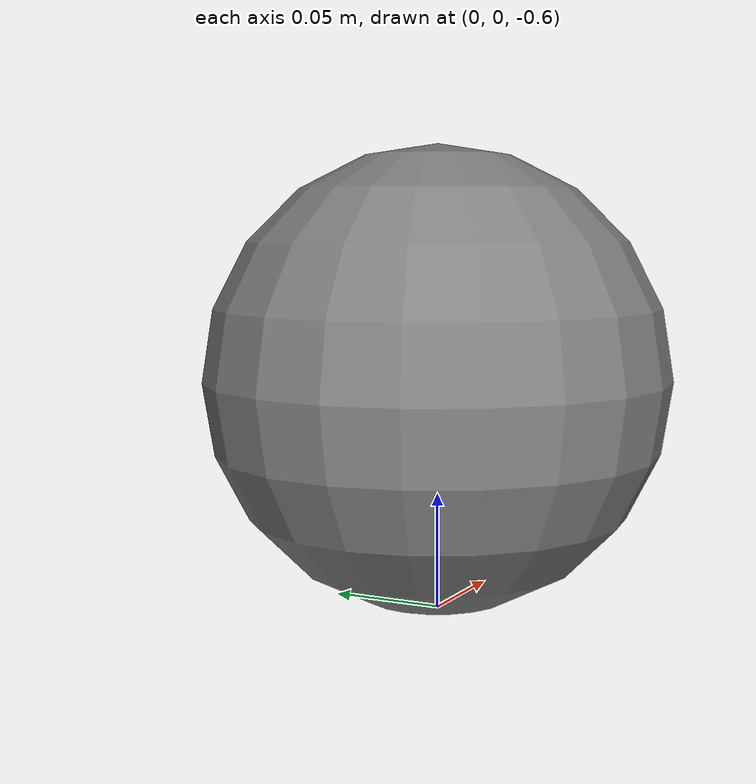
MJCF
<mujoco model="sensor_test">
            <option gravity="0 0 -9.81" timestep="0.01" integrator="RK4"/>
            <worldbody>
                <body name="link">
                    <joint name="j1" type="hinge" axis="0 1 0"/>
                    <geom type="sphere" size="0.1" mass="1.0" pos="0 0 -0.5"/>
                    <site name="imu_site" pos="0 0 -0.5"/>
                </body>
            </worldbody>
            <sensor>
                <jointpos name="j1_pos" joint="j1"/>
                <jointvel name="j1_vel" joint="j1"/>
            </sensor>
        </mujoco>
